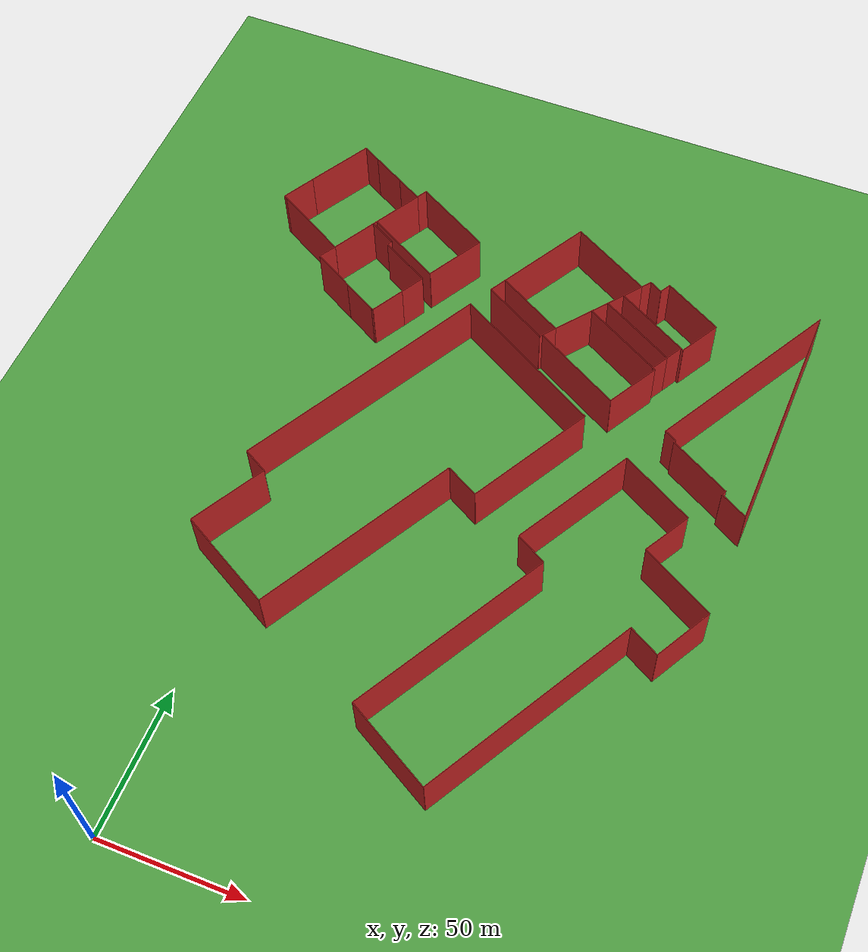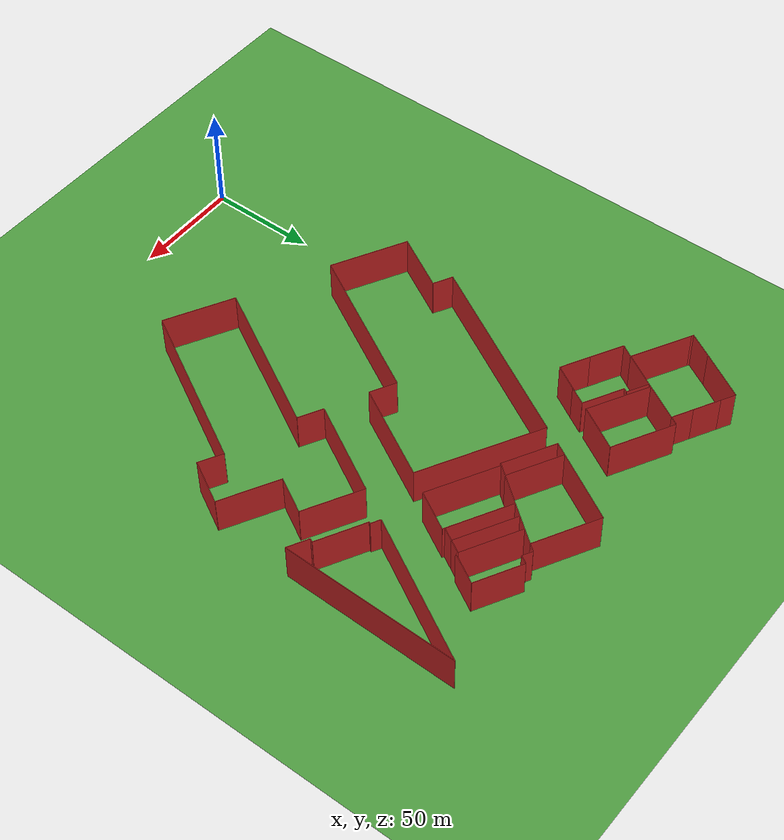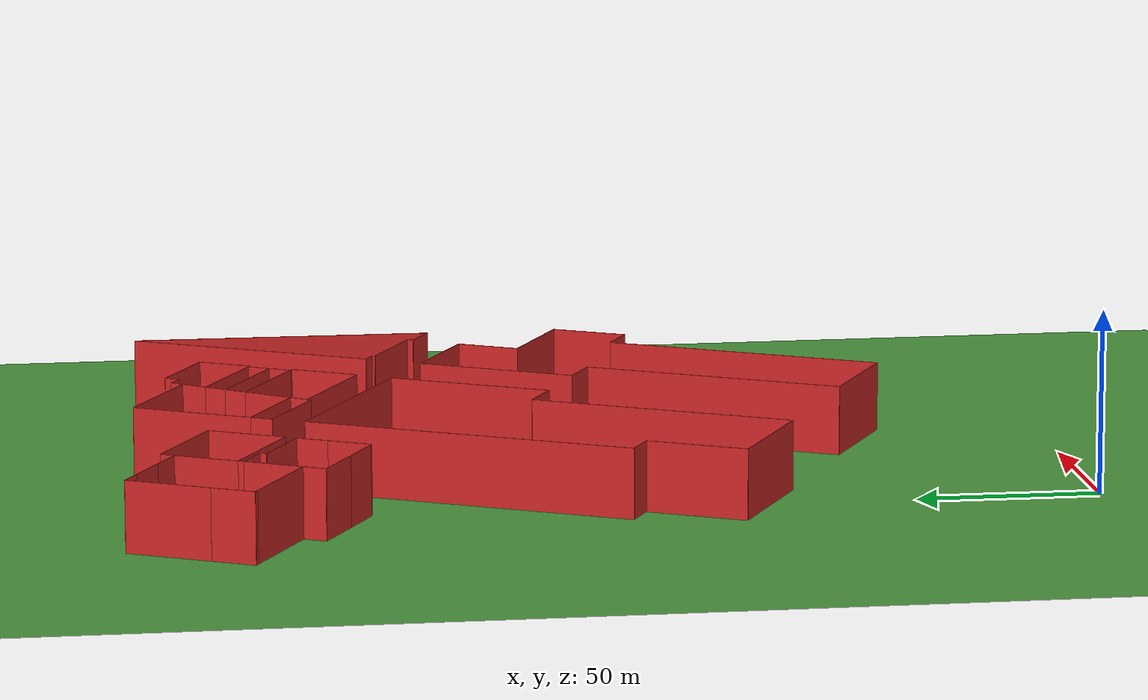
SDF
<sdf version="1.4">
 <world name="default">
  <model name="ground">
   <static>true</static>
   <link name="link">
    <collision name="collision">
     <geometry><plane><size>10000 10000</size><normal>0 0 1</normal></plane></geometry>
     <surface><friction><ode><mu>100</mu><mu2>50</mu2></ode></friction></surface>
    </collision>
    <visual name="visual">
     <pose>0 0 -1 0 0 0</pose>
     <geometry><plane><normal>0 0 1</normal><size>10000 10000</size></plane></geometry>
     <material>
      <script><uri>file://media/materials/scripts/gazebo.material</uri><name>Gazebo/Grass</name></script>
     </material>
    </visual>
   </link>
  </model>
  <include><uri>model://sun</uri></include>
  <model name="Cort Theatre">
   <static>true</static>
   <pose>-4.36286446838 212.144222751 0.0 0 0 0</pose>
   <link name="Cort Theatre_0">
    <collision name="Cort Theatre_0">
     <geometry><box><size>16.7948634877 0.2 20.0</size></box></geometry>
    </collision>
    <visual name="Cort Theatre_0">
     <geometry><box><size>16.7948634877 0.2 20.0</size></box></geometry>
     <material>
      <script><uri>file://media/materials/scripts/gazebo.material</uri><name>Gazebo/Red</name></script>
     </material>
    </visual>
    <pose>-10.3837756085 10.8355755443 9.0 0 0 -2.07905061288</pose>
   </link>
   <link name="Cort Theatre_1">
    <collision name="Cort Theatre_1">
     <geometry><box><size>10.6488389453 0.2 20.0</size></box></geometry>
    </collision>
    <visual name="Cort Theatre_1">
     <geometry><box><size>10.6488389453 0.2 20.0</size></box></geometry>
     <material>
      <script><uri>file://media/materials/scripts/gazebo.material</uri><name>Gazebo/Red</name></script>
     </material>
    </visual>
    <pose>-1.63815273238 15.5940784204 9.0 0 0 2.63627907826</pose>
   </link>
   <link name="Cort Theatre_2">
    <collision name="Cort Theatre_2">
     <geometry><box><size>1.85104023181 0.2 20.0</size></box></geometry>
    </collision>
    <visual name="Cort Theatre_2">
     <geometry><box><size>1.85104023181 0.2 20.0</size></box></geometry>
     <material>
      <script><uri>file://media/materials/scripts/gazebo.material</uri><name>Gazebo/Red</name></script>
     </material>
    </visual>
    <pose>2.57047128881 12.2080694788 9.0 0 0 1.06259533622</pose>
   </link>
   <link name="Cort Theatre_3">
    <collision name="Cort Theatre_3">
     <geometry><box><size>19.7477607896 0.2 20.0</size></box></geometry>
    </collision>
    <visual name="Cort Theatre_3">
     <geometry><box><size>19.7477607896 0.2 20.0</size></box></geometry>
     <material>
      <script><uri>file://media/materials/scripts/gazebo.material</uri><name>Gazebo/Red</name></script>
     </material>
    </visual>
    <pose>10.7598116261 6.61945018676 9.0 0 0 2.63624448339</pose>
   </link>
   <link name="Cort Theatre_4">
    <collision name="Cort Theatre_4">
     <geometry><box><size>8.91845258377 0.2 20.0</size></box></geometry>
    </collision>
    <visual name="Cort Theatre_4">
     <geometry><box><size>8.91845258377 0.2 20.0</size></box></geometry>
     <material>
      <script><uri>file://media/materials/scripts/gazebo.material</uri><name>Gazebo/Red</name></script>
     </material>
    </visual>
    <pose>17.236663799 -2.06020082189 9.0 0 0 1.06440048719</pose>
   </link>
   <link name="Cort Theatre_5">
    <collision name="Cort Theatre_5">
     <geometry><box><size>12.4680705157 0.2 20.0</size></box></geometry>
    </collision>
    <visual name="Cort Theatre_5">
     <geometry><box><size>12.4680705157 0.2 20.0</size></box></geometry>
     <material>
      <script><uri>file://media/materials/scripts/gazebo.material</uri><name>Gazebo/Red</name></script>
     </material>
    </visual>
    <pose>12.0158036098 -11.3922614566 9.0 0 0 1.05809356065</pose>
   </link>
   <link name="Cort Theatre_6">
    <collision name="Cort Theatre_6">
     <geometry><box><size>0.783792124312 0.2 20.0</size></box></geometry>
    </collision>
    <visual name="Cort Theatre_6">
     <geometry><box><size>0.783792124312 0.2 20.0</size></box></geometry>
     <material>
      <script><uri>file://media/materials/scripts/gazebo.material</uri><name>Gazebo/Red</name></script>
     </material>
    </visual>
    <pose>8.596416078 -16.6731203671 9.0 0 0 -0.397243342497</pose>
   </link>
   <link name="Cort Theatre_7">
    <collision name="Cort Theatre_7">
     <geometry><box><size>13.6431495412 0.2 20.0</size></box></geometry>
    </collision>
    <visual name="Cort Theatre_7">
     <geometry><box><size>13.6431495412 0.2 20.0</size></box></geometry>
     <material>
      <script><uri>file://media/materials/scripts/gazebo.material</uri><name>Gazebo/Red</name></script>
     </material>
    </visual>
    <pose>2.2472777113 -13.2533817516 9.0 0 0 -0.499613431341</pose>
   </link>
   <link name="Cort Theatre_8">
    <collision name="Cort Theatre_8">
     <geometry><box><size>16.1277163295 0.2 20.0</size></box></geometry>
    </collision>
    <visual name="Cort Theatre_8">
     <geometry><box><size>16.1277163295 0.2 20.0</size></box></geometry>
     <material>
      <script><uri>file://media/materials/scripts/gazebo.material</uri><name>Gazebo/Red</name></script>
     </material>
    </visual>
    <pose>-10.7845703233 -6.06013275487 9.0 0 0 -0.508371540513</pose>
   </link>
   <link name="Cort Theatre_9">
    <collision name="Cort Theatre_9">
     <geometry><box><size>6.55948380379 0.2 20.0</size></box></geometry>
    </collision>
    <visual name="Cort Theatre_9">
     <geometry><box><size>6.55948380379 0.2 20.0</size></box></geometry>
     <material>
      <script><uri>file://media/materials/scripts/gazebo.material</uri><name>Gazebo/Red</name></script>
     </material>
    </visual>
    <pose>-16.1495349807 0.682305680289 9.0 0 0 -2.10827115276</pose>
   </link>
  </model>
  <model name="office_building_266170602">
   <static>true</static>
   <pose>90.1135400945 223.930074156 0.0 0 0 0</pose>
   <link name="office_building_266170602_0">
    <collision name="office_building_266170602_0">
     <geometry><box><size>6.46584710408 0.2 20.0</size></box></geometry>
    </collision>
    <visual name="office_building_266170602_0">
     <geometry><box><size>6.46584710408 0.2 20.0</size></box></geometry>
     <material>
      <script><uri>file://media/materials/scripts/gazebo.material</uri><name>Gazebo/Red</name></script>
     </material>
    </visual>
    <pose>-9.86057877148 6.19334238072 9.0 0 0 -2.22969630693</pose>
   </link>
   <link name="office_building_266170602_1">
    <collision name="office_building_266170602_1">
     <geometry><box><size>28.8312294331 0.2 20.0</size></box></geometry>
    </collision>
    <visual name="office_building_266170602_1">
     <geometry><box><size>28.8312294331 0.2 20.0</size></box></geometry>
     <material>
      <script><uri>file://media/materials/scripts/gazebo.material</uri><name>Gazebo/Red</name></script>
     </material>
    </visual>
    <pose>4.72806185754 1.76268104817 9.0 0 0 2.63560610817</pose>
   </link>
   <link name="office_building_266170602_2">
    <collision name="office_building_266170602_2">
     <geometry><box><size>6.38605416811 0.2 20.0</size></box></geometry>
    </collision>
    <visual name="office_building_266170602_2">
     <geometry><box><size>6.38605416811 0.2 20.0</size></box></geometry>
     <material>
      <script><uri>file://media/materials/scripts/gazebo.material</uri><name>Gazebo/Red</name></script>
     </material>
    </visual>
    <pose>15.7805427965 -8.01193189071 9.0 0 0 1.06149693304</pose>
   </link>
   <link name="office_building_266170602_3">
    <collision name="office_building_266170602_3">
     <geometry><box><size>29.7949400489 0.2 20.0</size></box></geometry>
    </collision>
    <visual name="office_building_266170602_3">
     <geometry><box><size>29.7949400489 0.2 20.0</size></box></geometry>
     <material>
      <script><uri>file://media/materials/scripts/gazebo.material</uri><name>Gazebo/Red</name></script>
     </material>
    </visual>
    <pose>1.19190216748 -3.58127055815 9.0 0 0 -0.505839498041</pose>
   </link>
  </model>
  <model name="office_building_266170607">
   <static>true</static>
   <pose>69.1598123 227.638069023 0.0 0 0 0</pose>
   <link name="office_building_266170607_0">
    <collision name="office_building_266170607_0">
     <geometry><box><size>26.7698501954 0.2 20.0</size></box></geometry>
    </collision>
    <visual name="office_building_266170607_0">
     <geometry><box><size>26.7698501954 0.2 20.0</size></box></geometry>
     <material>
      <script><uri>file://media/materials/scripts/gazebo.material</uri><name>Gazebo/Red</name></script>
     </material>
    </visual>
    <pose>-15.4717021804 -10.2528727331 9.0 0 0 -0.505850177762</pose>
   </link>
   <link name="office_building_266170607_1">
    <collision name="office_building_266170607_1">
     <geometry><box><size>34.6493220729 0.2 20.0</size></box></geometry>
    </collision>
    <visual name="office_building_266170607_1">
     <geometry><box><size>34.6493220729 0.2 20.0</size></box></geometry>
     <material>
      <script><uri>file://media/materials/scripts/gazebo.material</uri><name>Gazebo/Red</name></script>
     </material>
    </visual>
    <pose>-18.7345934242 11.3593860619 9.0 0 0 -2.08001861668</pose>
   </link>
   <link name="office_building_266170607_2">
    <collision name="office_building_266170607_2">
     <geometry><box><size>31.9586753891 0.2 20.0</size></box></geometry>
    </collision>
    <visual name="office_building_266170607_2">
     <geometry><box><size>31.9586753891 0.2 20.0</size></box></geometry>
     <material>
      <script><uri>file://media/materials/scripts/gazebo.material</uri><name>Gazebo/Red</name></script>
     </material>
    </visual>
    <pose>3.68809449508 18.74101074 9.0 0 0 2.63558924128</pose>
   </link>
   <link name="office_building_266170607_3">
    <collision name="office_building_266170607_3">
     <geometry><box><size>7.5198456609 0.2 20.0</size></box></geometry>
    </collision>
    <visual name="office_building_266170607_3">
     <geometry><box><size>7.5198456609 0.2 20.0</size></box></geometry>
     <material>
      <script><uri>file://media/materials/scripts/gazebo.material</uri><name>Gazebo/Red</name></script>
     </material>
    </visual>
    <pose>15.3687684618 8.01878530584 9.0 0 0 0.913823398618</pose>
   </link>
   <link name="office_building_266170607_4">
    <collision name="office_building_266170607_4">
     <geometry><box><size>6.46584710408 0.2 20.0</size></box></geometry>
    </collision>
    <visual name="office_building_266170607_4">
     <geometry><box><size>6.46584710408 0.2 20.0</size></box></geometry>
     <material>
      <script><uri>file://media/materials/scripts/gazebo.material</uri><name>Gazebo/Red</name></script>
     </material>
    </visual>
    <pose>11.093149023 2.48534751331 9.0 0 0 0.911896346655</pose>
   </link>
   <link name="office_building_266170607_5">
    <collision name="office_building_266170607_5">
     <geometry><box><size>6.49263893655 0.2 20.0</size></box></geometry>
    </collision>
    <visual name="office_building_266170607_5">
     <geometry><box><size>6.49263893655 0.2 20.0</size></box></geometry>
     <material>
      <script><uri>file://media/materials/scripts/gazebo.material</uri><name>Gazebo/Red</name></script>
     </material>
    </visual>
    <pose>7.1288921066 -2.63961552032 9.0 0 0 0.912925741334</pose>
   </link>
   <link name="office_building_266170607_6">
    <collision name="office_building_266170607_6">
     <geometry><box><size>14.5698219598 0.2 20.0</size></box></geometry>
    </collision>
    <visual name="office_building_266170607_6">
     <geometry><box><size>14.5698219598 0.2 20.0</size></box></geometry>
     <material>
      <script><uri>file://media/materials/scripts/gazebo.material</uri><name>Gazebo/Red</name></script>
     </material>
    </visual>
    <pose>0.690458662313 -10.9734855203 9.0 0 0 0.913049064599</pose>
   </link>
  </model>
  <model name="office_building_266170606">
   <static>true</static>
   <pose>95.6930861508 232.899083671 0.0 0 0 0</pose>
   <link name="office_building_266170606_0">
    <collision name="office_building_266170606_0">
     <geometry><box><size>7.5198456609 0.2 20.0</size></box></geometry>
    </collision>
    <visual name="office_building_266170606_0">
     <geometry><box><size>7.5198456609 0.2 20.0</size></box></geometry>
     <material>
      <script><uri>file://media/materials/scripts/gazebo.material</uri><name>Gazebo/Red</name></script>
     </material>
    </visual>
    <pose>-11.164505389 2.75777065809 9.0 0 0 -2.22776925497</pose>
   </link>
   <link name="office_building_266170606_1">
    <collision name="office_building_266170606_1">
     <geometry><box><size>3.80024356136 0.2 20.0</size></box></geometry>
    </collision>
    <visual name="office_building_266170606_1">
     <geometry><box><size>3.80024356136 0.2 20.0</size></box></geometry>
     <material>
      <script><uri>file://media/materials/scripts/gazebo.material</uri><name>Gazebo/Red</name></script>
     </material>
    </visual>
    <pose>-7.70619940138 7.23841979945 9.0 0 0 -2.2288253503</pose>
   </link>
   <link name="office_building_266170606_2">
    <collision name="office_building_266170606_2">
     <geometry><box><size>5.04511257826 0.2 20.0</size></box></geometry>
    </collision>
    <visual name="office_building_266170606_2">
     <geometry><box><size>5.04511257826 0.2 20.0</size></box></geometry>
     <material>
      <script><uri>file://media/materials/scripts/gazebo.material</uri><name>Gazebo/Red</name></script>
     </material>
    </visual>
    <pose>-4.33698400505 7.52046384862 9.0 0 0 2.63618532027</pose>
   </link>
   <link name="office_building_266170606_3">
    <collision name="office_building_266170606_3">
     <geometry><box><size>4.1139057748 0.2 20.0</size></box></geometry>
    </collision>
    <visual name="office_building_266170606_3">
     <geometry><box><size>4.1139057748 0.2 20.0</size></box></geometry>
     <material>
      <script><uri>file://media/materials/scripts/gazebo.material</uri><name>Gazebo/Red</name></script>
     </material>
    </visual>
    <pose>-1.12343185807 8.09308675931 9.0 0 0 -2.08203059199</pose>
   </link>
   <link name="office_building_266170606_4">
    <collision name="office_building_266170606_4">
     <geometry><box><size>23.1584896 0.2 20.0</size></box></geometry>
    </collision>
    <visual name="office_building_266170606_4">
     <geometry><box><size>23.1584896 0.2 20.0</size></box></geometry>
     <material>
      <script><uri>file://media/materials/scripts/gazebo.material</uri><name>Gazebo/Red</name></script>
     </material>
    </visual>
    <pose>10.0126185396 4.27735786108 9.0 0 0 2.63584671459</pose>
   </link>
   <link name="office_building_266170606_5">
    <collision name="office_building_266170606_5">
     <geometry><box><size>15.3078625947 0.2 20.0</size></box></geometry>
    </collision>
    <visual name="office_building_266170606_5">
     <geometry><box><size>15.3078625947 0.2 20.0</size></box></geometry>
     <material>
      <script><uri>file://media/materials/scripts/gazebo.material</uri><name>Gazebo/Red</name></script>
     </material>
    </visual>
    <pose>16.4115032328 -8.01542620491 9.0 0 0 1.0616467301</pose>
   </link>
   <link name="office_building_266170606_6">
    <collision name="office_building_266170606_6">
     <geometry><box><size>1.05221356738 0.2 20.0</size></box></geometry>
    </collision>
    <visual name="office_building_266170606_6">
     <geometry><box><size>1.05221356738 0.2 20.0</size></box></geometry>
     <material>
      <script><uri>file://media/materials/scripts/gazebo.material</uri><name>Gazebo/Red</name></script>
     </material>
    </visual>
    <pose>12.219258629 -14.4458404809 9.0 0 0 -0.500992884495</pose>
   </link>
   <link name="office_building_266170606_7">
    <collision name="office_building_266170606_7">
     <geometry><box><size>28.8312294331 0.2 20.0</size></box></geometry>
    </collision>
    <visual name="office_building_266170606_7">
     <geometry><box><size>28.8312294331 0.2 20.0</size></box></geometry>
     <material>
      <script><uri>file://media/materials/scripts/gazebo.material</uri><name>Gazebo/Red</name></script>
     </material>
    </visual>
    <pose>-0.851484198728 -7.206328467 9.0 0 0 -0.505986545415</pose>
   </link>
  </model>
  <model name="office_building_266170604">
   <static>true</static>
   <pose>55.2261476489 211.897880235 0.0 0 0 0</pose>
   <link name="office_building_266170604_0">
    <collision name="office_building_266170604_0">
     <geometry><box><size>25.8199530438 0.2 20.0</size></box></geometry>
    </collision>
    <visual name="office_building_266170604_0">
     <geometry><box><size>25.8199530438 0.2 20.0</size></box></geometry>
     <material>
      <script><uri>file://media/materials/scripts/gazebo.material</uri><name>Gazebo/Red</name></script>
     </material>
    </visual>
    <pose>-5.04639229611 0.164384706332 9.0 0 0 -0.506090299136</pose>
   </link>
   <link name="office_building_266170604_1">
    <collision name="office_building_266170604_1">
     <geometry><box><size>6.35319772055 0.2 20.0</size></box></geometry>
    </collision>
    <visual name="office_building_266170604_1">
     <geometry><box><size>6.35319772055 0.2 20.0</size></box></geometry>
     <material>
      <script><uri>file://media/materials/scripts/gazebo.material</uri><name>Gazebo/Red</name></script>
     </material>
    </visual>
    <pose>-14.7923650594 9.19782079086 9.0 0 0 -2.07897541413</pose>
   </link>
   <link name="office_building_266170604_2">
    <collision name="office_building_266170604_2">
     <geometry><box><size>26.7698501954 0.2 20.0</size></box></geometry>
    </collision>
    <visual name="office_building_266170604_2">
     <geometry><box><size>26.7698501954 0.2 20.0</size></box></geometry>
     <material>
      <script><uri>file://media/materials/scripts/gazebo.material</uri><name>Gazebo/Red</name></script>
     </material>
    </visual>
    <pose>-1.53803752925 5.48731605519 9.0 0 0 2.63574247583</pose>
   </link>
   <link name="office_building_266170604_3">
    <collision name="office_building_266170604_3">
     <geometry><box><size>5.317608497 0.2 20.0</size></box></geometry>
    </collision>
    <visual name="office_building_266170604_3">
     <geometry><box><size>5.317608497 0.2 20.0</size></box></geometry>
     <material>
      <script><uri>file://media/materials/scripts/gazebo.material</uri><name>Gazebo/Red</name></script>
     </material>
    </visual>
    <pose>8.54709209828 -3.10394779131 9.0 0 0 0.913959547044</pose>
   </link>
   <link name="office_building_266170604_4">
    <collision name="office_building_266170604_4">
     <geometry><box><size>1.1145288989 0.2 20.0</size></box></geometry>
    </collision>
    <visual name="office_building_266170604_4">
     <geometry><box><size>1.1145288989 0.2 20.0</size></box></geometry>
     <material>
      <script><uri>file://media/materials/scripts/gazebo.material</uri><name>Gazebo/Red</name></script>
     </material>
    </visual>
    <pose>6.58442982536 -5.65170076152 9.0 0 0 0.916488381561</pose>
   </link>
  </model>
  <model name="McGraw-Hill Building">
   <static>true</static>
   <pose>23.705602534 133.859498895 0.0 0 0 0</pose>
   <link name="McGraw-Hill Building_0">
    <collision name="McGraw-Hill Building_0">
     <geometry><box><size>28.337486422 0.2 20.0</size></box></geometry>
    </collision>
    <visual name="McGraw-Hill Building_0">
     <geometry><box><size>28.337486422 0.2 20.0</size></box></geometry>
     <material>
      <script><uri>file://media/materials/scripts/gazebo.material</uri><name>Gazebo/Red</name></script>
     </material>
    </visual>
    <pose>-32.2778916905 -23.1403691922 9.0 0 0 -2.07179853769</pose>
   </link>
   <link name="McGraw-Hill Building_1">
    <collision name="McGraw-Hill Building_1">
     <geometry><box><size>9.55441133874 0.2 20.0</size></box></geometry>
    </collision>
    <visual name="McGraw-Hill Building_1">
     <geometry><box><size>9.55441133874 0.2 20.0</size></box></geometry>
     <material>
      <script><uri>file://media/materials/scripts/gazebo.material</uri><name>Gazebo/Red</name></script>
     </material>
    </visual>
    <pose>-29.664585882 -8.42192685954 9.0 0 0 -0.500166996969</pose>
   </link>
   <link name="McGraw-Hill Building_2">
    <collision name="McGraw-Hill Building_2">
     <geometry><box><size>93.6269200344 0.2 20.0</size></box></geometry>
    </collision>
    <visual name="McGraw-Hill Building_2">
     <geometry><box><size>93.6269200344 0.2 20.0</size></box></geometry>
     <material>
      <script><uri>file://media/materials/scripts/gazebo.material</uri><name>Gazebo/Red</name></script>
     </material>
    </visual>
    <pose>-11.4554388299 34.9749048299 9.0 0 0 -2.06976427549</pose>
   </link>
   <link name="McGraw-Hill Building_3">
    <collision name="McGraw-Hill Building_3">
     <geometry><box><size>59.6963475278 0.2 20.0</size></box></geometry>
    </collision>
    <visual name="McGraw-Hill Building_3">
     <geometry><box><size>59.6963475278 0.2 20.0</size></box></geometry>
     <material>
      <script><uri>file://media/materials/scripts/gazebo.material</uri><name>Gazebo/Red</name></script>
     </material>
    </visual>
    <pose>37.0094243609 61.534358507 9.0 0 0 2.63254579422</pose>
   </link>
   <link name="McGraw-Hill Building_4">
    <collision name="McGraw-Hill Building_4">
     <geometry><box><size>46.6663329627 0.2 20.0</size></box></geometry>
    </collision>
    <visual name="McGraw-Hill Building_4">
     <geometry><box><size>46.6663329627 0.2 20.0</size></box></geometry>
     <material>
      <script><uri>file://media/materials/scripts/gazebo.material</uri><name>Gazebo/Red</name></script>
     </material>
    </visual>
    <pose>51.8753573606 26.5173689144 9.0 0 0 1.07024648121</pose>
   </link>
   <link name="McGraw-Hill Building_5">
    <collision name="McGraw-Hill Building_5">
     <geometry><box><size>12.9018291181 0.2 20.0</size></box></geometry>
    </collision>
    <visual name="McGraw-Hill Building_5">
     <geometry><box><size>12.9018291181 0.2 20.0</size></box></geometry>
     <material>
      <script><uri>file://media/materials/scripts/gazebo.material</uri><name>Gazebo/Red</name></script>
     </material>
    </visual>
    <pose>35.0178221958 9.1421255534 9.0 0 0 -0.500468072569</pose>
   </link>
   <link name="McGraw-Hill Building_6">
    <collision name="McGraw-Hill Building_6">
     <geometry><box><size>74.7986335893 0.2 20.0</size></box></geometry>
    </collision>
    <visual name="McGraw-Hill Building_6">
     <geometry><box><size>74.7986335893 0.2 20.0</size></box></geometry>
     <material>
      <script><uri>file://media/materials/scripts/gazebo.material</uri><name>Gazebo/Red</name></script>
     </material>
    </visual>
    <pose>11.3995768374 -20.5680060327 9.0 0 0 1.06993399599</pose>
   </link>
   <link name="McGraw-Hill Building_7">
    <collision name="McGraw-Hill Building_7">
     <geometry><box><size>37.0792923171 0.2 20.0</size></box></geometry>
    </collision>
    <visual name="McGraw-Hill Building_7">
     <geometry><box><size>37.0792923171 0.2 20.0</size></box></geometry>
     <material>
      <script><uri>file://media/materials/scripts/gazebo.material</uri><name>Gazebo/Red</name></script>
     </material>
    </visual>
    <pose>-22.8210569973 -44.4706586814 9.0 0 0 -0.500890304826</pose>
   </link>
  </model>
  <model name="office_building_266170769">
   <static>true</static>
   <pose>-22.5111096717 237.807646214 0.0 0 0 0</pose>
   <link name="office_building_266170769_0">
    <collision name="office_building_266170769_0">
     <geometry><box><size>29.2007010532 0.2 20.0</size></box></geometry>
    </collision>
    <visual name="office_building_266170769_0">
     <geometry><box><size>29.2007010532 0.2 20.0</size></box></geometry>
     <material>
      <script><uri>file://media/materials/scripts/gazebo.material</uri><name>Gazebo/Red</name></script>
     </material>
    </visual>
    <pose>-9.0982494142 -15.0968466362 9.0 0 0 -0.505250510873</pose>
   </link>
   <link name="office_building_266170769_1">
    <collision name="office_building_266170769_1">
     <geometry><box><size>1.17806711243 0.2 20.0</size></box></geometry>
    </collision>
    <visual name="office_building_266170769_1">
     <geometry><box><size>1.17806711243 0.2 20.0</size></box></geometry>
     <material>
      <script><uri>file://media/materials/scripts/gazebo.material</uri><name>Gazebo/Red</name></script>
     </material>
    </visual>
    <pose>-22.3913811906 -7.74771344567 9.0 0 0 -0.499567638286</pose>
   </link>
   <link name="office_building_266170769_2">
    <collision name="office_building_266170769_2">
     <geometry><box><size>12.4106081806 0.2 20.0</size></box></geometry>
    </collision>
    <visual name="office_building_266170769_2">
     <geometry><box><size>12.4106081806 0.2 20.0</size></box></geometry>
     <material>
      <script><uri>file://media/materials/scripts/gazebo.material</uri><name>Gazebo/Red</name></script>
     </material>
    </visual>
    <pose>-19.917111867 -2.02882867717 9.0 0 0 -2.07379855365</pose>
   </link>
   <link name="office_building_266170769_3">
    <collision name="office_building_266170769_3">
     <geometry><box><size>24.1565279987 0.2 20.0</size></box></geometry>
    </collision>
    <visual name="office_building_266170769_3">
     <geometry><box><size>24.1565279987 0.2 20.0</size></box></geometry>
     <material>
      <script><uri>file://media/materials/scripts/gazebo.material</uri><name>Gazebo/Red</name></script>
     </material>
    </visual>
    <pose>-11.0209854403 13.9443749602 9.0 0 0 -2.08160056982</pose>
   </link>
   <link name="office_building_266170769_4">
    <collision name="office_building_266170769_4">
     <geometry><box><size>7.07893668762 0.2 20.0</size></box></geometry>
    </collision>
    <visual name="office_building_266170769_4">
     <geometry><box><size>7.07893668762 0.2 20.0</size></box></geometry>
     <material>
      <script><uri>file://media/materials/scripts/gazebo.material</uri><name>Gazebo/Red</name></script>
     </material>
    </visual>
    <pose>-2.01945768238 22.7667583408 9.0 0 0 2.63604745748</pose>
   </link>
   <link name="office_building_266170769_5">
    <collision name="office_building_266170769_5">
     <geometry><box><size>13.0228200452 0.2 20.0</size></box></geometry>
    </collision>
    <visual name="office_building_266170769_5">
     <geometry><box><size>13.0228200452 0.2 20.0</size></box></geometry>
     <material>
      <script><uri>file://media/materials/scripts/gazebo.material</uri><name>Gazebo/Red</name></script>
     </material>
    </visual>
    <pose>6.77589161255 17.9024002355 9.0 0 0 2.63659619894</pose>
   </link>
   <link name="office_building_266170769_6">
    <collision name="office_building_266170769_6">
     <geometry><box><size>10.2769774499 0.2 20.0</size></box></geometry>
    </collision>
    <visual name="office_building_266170769_6">
     <geometry><box><size>10.2769774499 0.2 20.0</size></box></geometry>
     <material>
      <script><uri>file://media/materials/scripts/gazebo.material</uri><name>Gazebo/Red</name></script>
     </material>
    </visual>
    <pose>16.9722733443 12.2673369711 9.0 0 0 2.63686486013</pose>
   </link>
   <link name="office_building_266170769_7">
    <collision name="office_building_266170769_7">
     <geometry><box><size>18.2468106498 0.2 20.0</size></box></geometry>
    </collision>
    <visual name="office_building_266170769_7">
     <geometry><box><size>18.2468106498 0.2 20.0</size></box></geometry>
     <material>
      <script><uri>file://media/materials/scripts/gazebo.material</uri><name>Gazebo/Red</name></script>
     </material>
    </visual>
    <pose>17.0330880559 1.81068898036 9.0 0 0 1.06291790718</pose>
   </link>
   <link name="office_building_266170769_8">
    <collision name="office_building_266170769_8">
     <geometry><box><size>1.5251167133 0.2 20.0</size></box></geometry>
    </collision>
    <visual name="office_building_266170769_8">
     <geometry><box><size>1.5251167133 0.2 20.0</size></box></geometry>
     <material>
      <script><uri>file://media/materials/scripts/gazebo.material</uri><name>Gazebo/Red</name></script>
     </material>
    </visual>
    <pose>12.2236282517 -6.82651718749 9.0 0 0 1.06040537391</pose>
   </link>
   <link name="office_building_266170769_9">
    <collision name="office_building_266170769_9">
     <geometry><box><size>16.7948634877 0.2 20.0</size></box></geometry>
    </collision>
    <visual name="office_building_266170769_9">
     <geometry><box><size>16.7948634877 0.2 20.0</size></box></geometry>
     <material>
      <script><uri>file://media/materials/scripts/gazebo.material</uri><name>Gazebo/Red</name></script>
     </material>
    </visual>
    <pose>7.76446959488 -14.8278479193 9.0 0 0 1.06254204071</pose>
   </link>
  </model>
  <model name="Exxon Building">
   <static>true</static>
   <pose>111.023079432 116.832374244 0.0 0 0 0</pose>
   <link name="Exxon Building_0">
    <collision name="Exxon Building_0">
     <geometry><box><size>21.6975701595 0.2 20.0</size></box></geometry>
    </collision>
    <visual name="Exxon Building_0">
     <geometry><box><size>21.6975701595 0.2 20.0</size></box></geometry>
     <material>
      <script><uri>file://media/materials/scripts/gazebo.material</uri><name>Gazebo/Red</name></script>
     </material>
    </visual>
    <pose>30.2843740405 0.706673688025 9.0 0 0 -2.07226831346</pose>
   </link>
   <link name="Exxon Building_1">
    <collision name="Exxon Building_1">
     <geometry><box><size>28.8506483761 0.2 20.0</size></box></geometry>
    </collision>
    <visual name="Exxon Building_1">
     <geometry><box><size>28.8506483761 0.2 20.0</size></box></geometry>
     <material>
      <script><uri>file://media/materials/scripts/gazebo.material</uri><name>Gazebo/Red</name></script>
     </material>
    </visual>
    <pose>22.8790699032 17.2063435222 9.0 0 0 -0.505598327856</pose>
   </link>
   <link name="Exxon Building_2">
    <collision name="Exxon Building_2">
     <geometry><box><size>17.9392907708 0.2 20.0</size></box></geometry>
    </collision>
    <visual name="Exxon Building_2">
     <geometry><box><size>17.9392907708 0.2 20.0</size></box></geometry>
     <material>
      <script><uri>file://media/materials/scripts/gazebo.material</uri><name>Gazebo/Red</name></script>
     </material>
    </visual>
    <pose>14.606452075 32.0383865935 9.0 0 0 -2.076853766</pose>
   </link>
   <link name="Exxon Building_3">
    <collision name="Exxon Building_3">
     <geometry><box><size>28.7621693015 0.2 20.0</size></box></geometry>
    </collision>
    <visual name="Exxon Building_3">
     <geometry><box><size>28.7621693015 0.2 20.0</size></box></geometry>
     <material>
      <script><uri>file://media/materials/scripts/gazebo.material</uri><name>Gazebo/Red</name></script>
     </material>
    </visual>
    <pose>6.37278002495 46.8494389063 9.0 0 0 -0.505632967184</pose>
   </link>
   <link name="Exxon Building_4">
    <collision name="Exxon Building_4">
     <geometry><box><size>45.4597232897 0.2 20.0</size></box></geometry>
    </collision>
    <visual name="Exxon Building_4">
     <geometry><box><size>45.4597232897 0.2 20.0</size></box></geometry>
     <material>
      <script><uri>file://media/materials/scripts/gazebo.material</uri><name>Gazebo/Red</name></script>
     </material>
    </visual>
    <pose>-17.2341541055 33.9382703464 9.0 0 0 1.06436275014</pose>
   </link>
   <link name="Exxon Building_5">
    <collision name="Exxon Building_5">
     <geometry><box><size>12.1004886383 0.2 20.0</size></box></geometry>
    </collision>
    <visual name="Exxon Building_5">
     <geometry><box><size>12.1004886383 0.2 20.0</size></box></geometry>
     <material>
      <script><uri>file://media/materials/scripts/gazebo.material</uri><name>Gazebo/Red</name></script>
     </material>
    </visual>
    <pose>-22.9667087711 11.1303467087 9.0 0 0 2.63584443689</pose>
   </link>
   <link name="Exxon Building_6">
    <collision name="Exxon Building_6">
     <geometry><box><size>74.0906454964 0.2 20.0</size></box></geometry>
    </collision>
    <visual name="Exxon Building_6">
     <geometry><box><size>74.0906454964 0.2 20.0</size></box></geometry>
     <material>
      <script><uri>file://media/materials/scripts/gazebo.material</uri><name>Gazebo/Red</name></script>
     </material>
    </visual>
    <pose>-35.6100288358 -24.2145074763 9.0 0 0 1.06538466385</pose>
   </link>
   <link name="Exxon Building_7">
    <collision name="Exxon Building_7">
     <geometry><box><size>33.8584769057 0.2 20.0</size></box></geometry>
    </collision>
    <visual name="Exxon Building_7">
     <geometry><box><size>33.8584769057 0.2 20.0</size></box></geometry>
     <material>
      <script><uri>file://media/materials/scripts/gazebo.material</uri><name>Gazebo/Red</name></script>
     </material>
    </visual>
    <pose>-38.7350701256 -64.8276521548 9.0 0 0 2.63599096276</pose>
   </link>
   <link name="Exxon Building_8">
    <collision name="Exxon Building_8">
     <geometry><box><size>79.9109958297 0.2 20.0</size></box></geometry>
    </collision>
    <visual name="Exxon Building_8">
     <geometry><box><size>79.9109958297 0.2 20.0</size></box></geometry>
     <material>
      <script><uri>file://media/materials/scripts/gazebo.material</uri><name>Gazebo/Red</name></script>
     </material>
    </visual>
    <pose>-4.58123352429 -38.0656408869 9.0 0 0 -2.07613846844</pose>
   </link>
   <link name="Exxon Building_9">
    <collision name="Exxon Building_9">
     <geometry><box><size>11.779760146 0.2 20.0</size></box></geometry>
    </collision>
    <visual name="Exxon Building_9">
     <geometry><box><size>11.779760146 0.2 20.0</size></box></geometry>
     <material>
      <script><uri>file://media/materials/scripts/gazebo.material</uri><name>Gazebo/Red</name></script>
     </material>
    </visual>
    <pose>19.9153386185 -5.95529471766 9.0 0 0 2.63630124208</pose>
   </link>
  </model>
  <model name="office_building_266170591">
   <static>true</static>
   <pose>86.4862026971 218.615599629 0.0 0 0 0</pose>
   <link name="office_building_266170591_0">
    <collision name="office_building_266170591_0">
     <geometry><box><size>6.49263893655 0.2 20.0</size></box></geometry>
    </collision>
    <visual name="office_building_266170591_0">
     <geometry><box><size>6.49263893655 0.2 20.0</size></box></geometry>
     <material>
      <script><uri>file://media/materials/scripts/gazebo.material</uri><name>Gazebo/Red</name></script>
     </material>
    </visual>
    <pose>-10.1974982905 6.38285387381 9.0 0 0 -2.22866691226</pose>
   </link>
   <link name="office_building_266170591_1">
    <collision name="office_building_266170591_1">
     <geometry><box><size>29.7949400489 0.2 20.0</size></box></geometry>
    </collision>
    <visual name="office_building_266170591_1">
     <geometry><box><size>29.7949400489 0.2 20.0</size></box></geometry>
     <material>
      <script><uri>file://media/materials/scripts/gazebo.material</uri><name>Gazebo/Red</name></script>
     </material>
    </visual>
    <pose>4.81923956484 1.73320396856 9.0 0 0 2.63575315555</pose>
   </link>
   <link name="office_building_266170591_2">
    <collision name="office_building_266170591_2">
     <geometry><box><size>6.42089555911 0.2 20.0</size></box></geometry>
    </collision>
    <visual name="office_building_266170591_2">
     <geometry><box><size>6.42089555911 0.2 20.0</size></box></geometry>
     <material>
      <script><uri>file://media/materials/scripts/gazebo.material</uri><name>Gazebo/Red</name></script>
     </material>
    </visual>
    <pose>16.2887012547 -8.28988097428 9.0 0 0 1.06254394042</pose>
   </link>
   <link name="office_building_266170591_3">
    <collision name="office_building_266170591_3">
     <geometry><box><size>30.7627321863 0.2 20.0</size></box></geometry>
    </collision>
    <visual name="office_building_266170591_3">
     <geometry><box><size>30.7627321863 0.2 20.0</size></box></geometry>
     <material>
      <script><uri>file://media/materials/scripts/gazebo.material</uri><name>Gazebo/Red</name></script>
     </material>
    </visual>
    <pose>1.27196339934 -3.64023106903 9.0 0 0 -0.505941152418</pose>
   </link>
  </model>
  <model name="office_building_266170581">
   <static>true</static>
   <pose>81.7201291078 209.547848956 0.0 0 0 0</pose>
   <link name="office_building_266170581_0">
    <collision name="office_building_266170581_0">
     <geometry><box><size>30.7627321863 0.2 20.0</size></box></geometry>
    </collision>
    <visual name="office_building_266170581_0">
     <geometry><box><size>30.7627321863 0.2 20.0</size></box></geometry>
     <material>
      <script><uri>file://media/materials/scripts/gazebo.material</uri><name>Gazebo/Red</name></script>
     </material>
    </visual>
    <pose>6.03803698863 5.4275196038 9.0 0 0 2.63565150117</pose>
   </link>
   <link name="office_building_266170581_1">
    <collision name="office_building_266170581_1">
     <geometry><box><size>1.04247432066 0.2 20.0</size></box></geometry>
    </collision>
    <visual name="office_building_266170581_1">
     <geometry><box><size>1.04247432066 0.2 20.0</size></box></geometry>
     <material>
      <script><uri>file://media/materials/scripts/gazebo.material</uri><name>Gazebo/Red</name></script>
     </material>
    </visual>
    <pose>19.9482984299 -2.27945234592 9.0 0 0 2.6354781211</pose>
   </link>
   <link name="office_building_266170581_2">
    <collision name="office_building_266170581_2">
     <geometry><box><size>19.6544173718 0.2 20.0</size></box></geometry>
    </collision>
    <visual name="office_building_266170581_2">
     <geometry><box><size>19.6544173718 0.2 20.0</size></box></geometry>
     <material>
      <script><uri>file://media/materials/scripts/gazebo.material</uri><name>Gazebo/Red</name></script>
     </material>
    </visual>
    <pose>15.6170185416 -11.1145055281 9.0 0 0 1.06199076382</pose>
   </link>
   <link name="office_building_266170581_3">
    <collision name="office_building_266170581_3">
     <geometry><box><size>34.7515735087 0.2 20.0</size></box></geometry>
    </collision>
    <visual name="office_building_266170581_3">
     <geometry><box><size>34.7515735087 0.2 20.0</size></box></geometry>
     <material>
      <script><uri>file://media/materials/scripts/gazebo.material</uri><name>Gazebo/Red</name></script>
     </material>
    </visual>
    <pose>-4.37027411482 -11.2781846376 9.0 0 0 -0.505799322043</pose>
   </link>
   <link name="office_building_266170581_4">
    <collision name="office_building_266170581_4">
     <geometry><box><size>5.317608497 0.2 20.0</size></box></geometry>
    </collision>
    <visual name="office_building_266170581_4">
     <geometry><box><size>5.317608497 0.2 20.0</size></box></geometry>
     <material>
      <script><uri>file://media/materials/scripts/gazebo.material</uri><name>Gazebo/Red</name></script>
     </material>
    </visual>
    <pose>-17.9468893607 -0.753916512599 9.0 0 0 -2.22763310655</pose>
   </link>
   <link name="office_building_266170581_5">
    <collision name="office_building_266170581_5">
     <geometry><box><size>14.5698219598 0.2 20.0</size></box></geometry>
    </collision>
    <visual name="office_building_266170581_5">
     <geometry><box><size>14.5698219598 0.2 20.0</size></box></geometry>
     <material>
      <script><uri>file://media/materials/scripts/gazebo.material</uri><name>Gazebo/Red</name></script>
     </material>
    </visual>
    <pose>-11.8698581455 7.11673454667 9.0 0 0 -2.22854358899</pose>
   </link>
  </model>
  <model name="office_building_266170589">
   <static>true</static>
   <pose>5.84717184632 239.129471717 0.0 0 0 0</pose>
   <link name="office_building_266170589_0">
    <collision name="office_building_266170589_0">
     <geometry><box><size>30.4022433863 0.2 20.0</size></box></geometry>
    </collision>
    <visual name="office_building_266170589_0">
     <geometry><box><size>30.4022433863 0.2 20.0</size></box></geometry>
     <material>
      <script><uri>file://media/materials/scripts/gazebo.material</uri><name>Gazebo/Red</name></script>
     </material>
    </visual>
    <pose>8.37312222774 4.61950999269 9.0 0 0 2.63667380871</pose>
   </link>
   <link name="office_building_266170589_1">
    <collision name="office_building_266170589_1">
     <geometry><box><size>22.2728094816 0.2 20.0</size></box></geometry>
    </collision>
    <visual name="office_building_266170589_1">
     <geometry><box><size>22.2728094816 0.2 20.0</size></box></geometry>
     <material>
      <script><uri>file://media/materials/scripts/gazebo.material</uri><name>Gazebo/Red</name></script>
     </material>
    </visual>
    <pose>16.2563017277 -12.461709565 9.0 0 0 1.06238920125</pose>
   </link>
   <link name="office_building_266170589_2">
    <collision name="office_building_266170589_2">
     <geometry><box><size>30.3925221819 0.2 20.0</size></box></geometry>
    </collision>
    <visual name="office_building_266170589_2">
     <geometry><box><size>30.3925221819 0.2 20.0</size></box></geometry>
     <material>
      <script><uri>file://media/materials/scripts/gazebo.material</uri><name>Gazebo/Red</name></script>
     </material>
    </visual>
    <pose>-2.46343936746 -14.8362813445 9.0 0 0 -0.505093804023</pose>
   </link>
   <link name="office_building_266170589_3">
    <collision name="office_building_266170589_3">
     <geometry><box><size>18.2468106498 0.2 20.0</size></box></geometry>
    </collision>
    <visual name="office_building_266170589_3">
     <geometry><box><size>18.2468106498 0.2 20.0</size></box></geometry>
     <material>
      <script><uri>file://media/materials/scripts/gazebo.material</uri><name>Gazebo/Red</name></script>
     </material>
    </visual>
    <pose>-11.3251934622 0.488863478097 9.0 0 0 -2.0786747464</pose>
   </link>
   <link name="office_building_266170589_4">
    <collision name="office_building_266170589_4">
     <geometry><box><size>4.0206500532 0.2 20.0</size></box></geometry>
    </collision>
    <visual name="office_building_266170589_4">
     <geometry><box><size>4.0206500532 0.2 20.0</size></box></geometry>
     <material>
      <script><uri>file://media/materials/scripts/gazebo.material</uri><name>Gazebo/Red</name></script>
     </material>
    </visual>
    <pose>-5.90968286028 10.2167713518 9.0 0 0 -2.07918955781</pose>
   </link>
  </model>
  <model name="Lehman Brothers Building">
   <static>true</static>
   <pose>131.84754034 183.695269419 0.0 0 0 0</pose>
   <link name="Lehman Brothers Building_0">
    <collision name="Lehman Brothers Building_0">
     <geometry><box><size>1.75039602091 0.2 20.0</size></box></geometry>
    </collision>
    <visual name="Lehman Brothers Building_0">
     <geometry><box><size>1.75039602091 0.2 20.0</size></box></geometry>
     <material>
      <script><uri>file://media/materials/scripts/gazebo.material</uri><name>Gazebo/Red</name></script>
     </material>
    </visual>
    <pose>5.92492063689 -14.0508446025 9.0 0 0 -2.07466214837</pose>
   </link>
   <link name="Lehman Brothers Building_1">
    <collision name="Lehman Brothers Building_1">
     <geometry><box><size>24.2446970802 0.2 20.0</size></box></geometry>
    </collision>
    <visual name="Lehman Brothers Building_1">
     <geometry><box><size>24.2446970802 0.2 20.0</size></box></geometry>
     <material>
      <script><uri>file://media/materials/scripts/gazebo.material</uri><name>Gazebo/Red</name></script>
     </material>
    </visual>
    <pose>-4.27705711141 -7.44741401154 9.0 0 0 -0.502373749167</pose>
   </link>
   <link name="Lehman Brothers Building_2">
    <collision name="Lehman Brothers Building_2">
     <geometry><box><size>0.807464207779 0.2 20.0</size></box></geometry>
    </collision>
    <visual name="Lehman Brothers Building_2">
     <geometry><box><size>0.807464207779 0.2 20.0</size></box></geometry>
     <material>
      <script><uri>file://media/materials/scripts/gazebo.material</uri><name>Gazebo/Red</name></script>
     </material>
    </visual>
    <pose>-14.7069933189 -1.25667621874 9.0 0 0 -2.07373503536</pose>
   </link>
   <link name="Lehman Brothers Building_3">
    <collision name="Lehman Brothers Building_3">
     <geometry><box><size>4.79503246646 0.2 20.0</size></box></geometry>
    </collision>
    <visual name="Lehman Brothers Building_3">
     <geometry><box><size>4.79503246646 0.2 20.0</size></box></geometry>
     <material>
      <script><uri>file://media/materials/scripts/gazebo.material</uri><name>Gazebo/Red</name></script>
     </material>
    </visual>
    <pose>-16.6139488635 0.250989332332 9.0 0 0 -0.502138651251</pose>
   </link>
   <link name="Lehman Brothers Building_4">
    <collision name="Lehman Brothers Building_4">
     <geometry><box><size>71.5318150502 0.2 20.0</size></box></geometry>
    </collision>
    <visual name="Lehman Brothers Building_4">
     <geometry><box><size>71.5318150502 0.2 20.0</size></box></geometry>
     <material>
      <script><uri>file://media/materials/scripts/gazebo.material</uri><name>Gazebo/Red</name></script>
     </material>
    </visual>
    <pose>-1.3737397085 32.685315681 9.0 0 0 -2.07700921528</pose>
   </link>
   <link name="Lehman Brothers Building_5">
    <collision name="Lehman Brothers Building_5">
     <geometry><box><size>83.9120299999 0.2 20.0</size></box></geometry>
    </collision>
    <visual name="Lehman Brothers Building_5">
     <geometry><box><size>83.9120299999 0.2 20.0</size></box></geometry>
     <material>
      <script><uri>file://media/materials/scripts/gazebo.material</uri><name>Gazebo/Red</name></script>
     </material>
    </visual>
    <pose>15.38864365 22.0136999899 9.0 0 0 1.55698663563</pose>
   </link>
   <link name="Lehman Brothers Building_6">
    <collision name="Lehman Brothers Building_6">
     <geometry><box><size>10.6227788972 0.2 20.0</size></box></geometry>
    </collision>
    <visual name="Lehman Brothers Building_6">
     <geometry><box><size>10.6227788972 0.2 20.0</size></box></geometry>
     <material>
      <script><uri>file://media/materials/scripts/gazebo.material</uri><name>Gazebo/Red</name></script>
     </material>
    </visual>
    <pose>10.1558123906 -17.3777948597 9.0 0 0 -0.50302830856</pose>
   </link>
  </model>
 </world>
</sdf>
